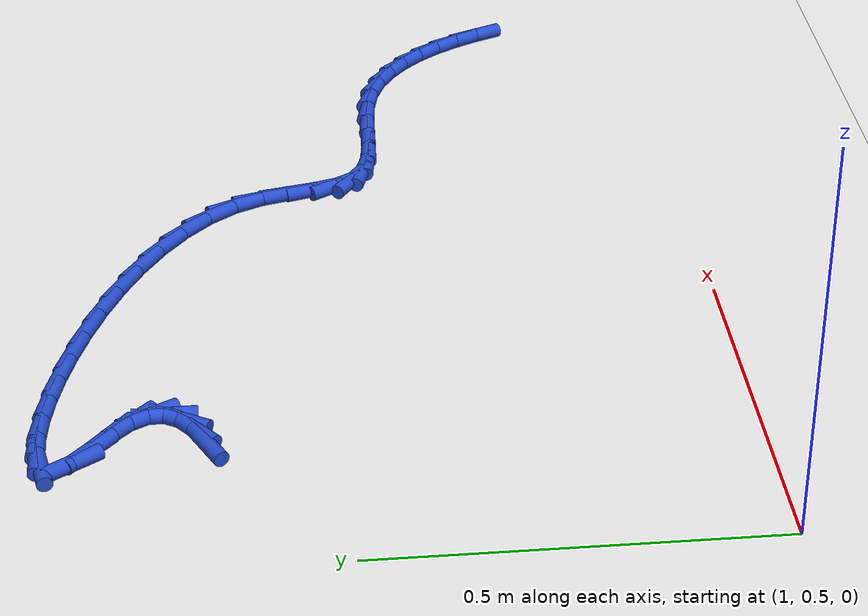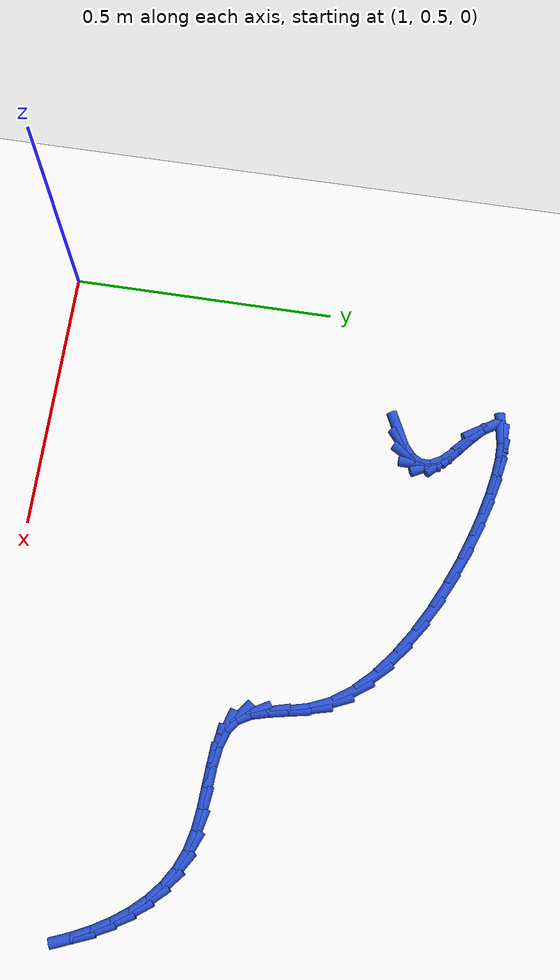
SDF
<sdf version="1.6">
 <world name="default">
  <model name="ground_plane">
   <static>1</static>
   <link name="link">
    <collision name="collision">
     <geometry><plane><normal>0 0 1</normal><size>100 100</size></plane></geometry>
     <surface><friction><ode><mu>100</mu><mu2>50</mu2></ode></friction></surface>
    </collision>
    <visual name="visual">
     <cast_shadows>0</cast_shadows>
     <geometry><plane><normal>0 0 1</normal><size>100 100</size></plane></geometry>
     <material>
      <script><uri>file://media/materials/scripts/gazebo.material</uri><name>Gazebo/WhiteGlow</name></script>
     </material>
    </visual>
   </link>
  </model>
  <model name="line">
   <link name="link_60">
    <pose>1.2222798924165295 1.1603760489507189 0.01 0 1.57 0.4559992652802266</pose>
    <collision name="collision">
     <geometry><cylinder><radius>0.01</radius><length>0.08</length></cylinder></geometry>
    </collision>
    <visual name="visual">
     <material>
      <script><name>Gazebo/Blue</name><uri>file://media/materials/scripts/gazebo.material</uri></script>
     </material>
     <geometry><cylinder><radius>0.01</radius><length>0.08</length></cylinder></geometry>
    </visual>
   </link>
   <link name="link_61">
    <pose>1.2498480330044583 1.1738975549472137 0.01 0 1.57 0.6788258323478273</pose>
    <collision name="collision">
     <geometry><cylinder><radius>0.01</radius><length>0.08</length></cylinder></geometry>
    </collision>
    <visual name="visual">
     <material>
      <script><name>Gazebo/Blue</name><uri>file://media/materials/scripts/gazebo.material</uri></script>
     </material>
     <geometry><cylinder><radius>0.01</radius><length>0.08</length></cylinder></geometry>
    </visual>
   </link>
   <link name="link_62">
    <pose>1.2692337053786533 1.1895363882454777 0.01 0 1.57 1.050735204315759</pose>
    <collision name="collision">
     <geometry><cylinder><radius>0.01</radius><length>0.08</length></cylinder></geometry>
    </collision>
    <visual name="visual">
     <material>
      <script><name>Gazebo/Blue</name><uri>file://media/materials/scripts/gazebo.material</uri></script>
     </material>
     <geometry><cylinder><radius>0.01</radius><length>0.08</length></cylinder></geometry>
    </visual>
   </link>
   <link name="link_63">
    <pose>1.279380008185273 1.2072547623940793 0.01 0 1.57 -1.5632070423842848</pose>
    <collision name="collision">
     <geometry><cylinder><radius>0.01</radius><length>0.08</length></cylinder></geometry>
    </collision>
    <visual name="visual">
     <material>
      <script><name>Gazebo/Blue</name><uri>file://media/materials/scripts/gazebo.material</uri></script>
     </material>
     <geometry><cylinder><radius>0.01</radius><length>0.08</length></cylinder></geometry>
    </visual>
   </link>
   <link name="link_64">
    <pose>1.279230040070475 1.2270148909415857 0.01 0 1.57 -1.0845802407968343</pose>
    <collision name="collision">
     <geometry><cylinder><radius>0.01</radius><length>0.08</length></cylinder></geometry>
    </collision>
    <visual name="visual">
     <material>
      <script><name>Gazebo/Blue</name><uri>file://media/materials/scripts/gazebo.material</uri></script>
     </material>
     <geometry><cylinder><radius>0.01</radius><length>0.08</length></cylinder></geometry>
    </visual>
   </link>
   <link name="link_65">
    <pose>1.2677268996804183 1.248778987436567 0.01 0 1.57 -0.7967105602884467</pose>
    <collision name="collision">
     <geometry><cylinder><radius>0.01</radius><length>0.08</length></cylinder></geometry>
    </collision>
    <visual name="visual">
     <material>
      <script><name>Gazebo/Blue</name><uri>file://media/materials/scripts/gazebo.material</uri></script>
     </material>
     <geometry><cylinder><radius>0.01</radius><length>0.08</length></cylinder></geometry>
    </visual>
   </link>
   <link name="link_66">
    <pose>1.2447308782711284 1.2723012647522993 0.01 0 1.57 -0.7028440234331017</pose>
    <collision name="collision">
     <geometry><cylinder><radius>0.01</radius><length>0.08</length></cylinder></geometry>
    </collision>
    <visual name="visual">
     <material>
      <script><name>Gazebo/Blue</name><uri>file://media/materials/scripts/gazebo.material</uri></script>
     </material>
     <geometry><cylinder><radius>0.01</radius><length>0.08</length></cylinder></geometry>
    </visual>
   </link>
   <link name="link_67">
    <pose>1.2170356798543405 1.295763578418855 0.01 0 1.57 -0.7489956851390467</pose>
    <collision name="collision">
     <geometry><cylinder><radius>0.01</radius><length>0.08</length></cylinder></geometry>
    </collision>
    <visual name="visual">
     <material>
      <script><name>Gazebo/Blue</name><uri>file://media/materials/scripts/gazebo.material</uri></script>
     </material>
     <geometry><cylinder><radius>0.01</radius><length>0.08</length></cylinder></geometry>
    </visual>
   </link>
   <link name="link_68">
    <pose>1.1945890412983757 1.316632718423587 0.01 0 1.57 -1.007700589777862</pose>
    <collision name="collision">
     <geometry><cylinder><radius>0.01</radius><length>0.08</length></cylinder></geometry>
    </collision>
    <visual name="visual">
     <material>
      <script><name>Gazebo/Blue</name><uri>file://media/materials/scripts/gazebo.material</uri></script>
     </material>
     <geometry><cylinder><radius>0.01</radius><length>0.08</length></cylinder></geometry>
    </visual>
   </link>
   <link name="link_71">
    <pose>1.197213082221624 1.3530111391347608 0.01 0 1.57 0.17477007311011628</pose>
    <collision name="collision">
     <geometry><cylinder><radius>0.01</radius><length>0.08</length></cylinder></geometry>
    </collision>
    <visual name="visual">
     <material>
      <script><name>Gazebo/Blue</name><uri>file://media/materials/scripts/gazebo.material</uri></script>
     </material>
     <geometry><cylinder><radius>0.01</radius><length>0.08</length></cylinder></geometry>
    </visual>
   </link>
   <link name="link_72">
    <pose>1.2181369649390634 1.356705700744409 0.01 0 1.57 -0.008687669150396234</pose>
    <collision name="collision">
     <geometry><cylinder><radius>0.01</radius><length>0.08</length></cylinder></geometry>
    </collision>
    <visual name="visual">
     <material>
      <script><name>Gazebo/Blue</name><uri>file://media/materials/scripts/gazebo.material</uri></script>
     </material>
     <geometry><cylinder><radius>0.01</radius><length>0.08</length></cylinder></geometry>
    </visual>
   </link>
   <link name="link_73">
    <pose>1.2469707877004825 1.3564551957295465 0.01 0 1.57 -0.11320363131416397</pose>
    <collision name="collision">
     <geometry><cylinder><radius>0.01</radius><length>0.08</length></cylinder></geometry>
    </collision>
    <visual name="visual">
     <material>
      <script><name>Gazebo/Blue</name><uri>file://media/materials/scripts/gazebo.material</uri></script>
     </material>
     <geometry><cylinder><radius>0.01</radius><length>0.08</length></cylinder></geometry>
    </visual>
   </link>
   <link name="link_74">
    <pose>1.2824457538093637 1.3524220577036903 0.01 0 1.57 -0.18521707449150657</pose>
    <collision name="collision">
     <geometry><cylinder><radius>0.01</radius><length>0.08</length></cylinder></geometry>
    </collision>
    <visual name="visual">
     <material>
      <script><name>Gazebo/Blue</name><uri>file://media/materials/scripts/gazebo.material</uri></script>
     </material>
     <geometry><cylinder><radius>0.01</radius><length>0.08</length></cylinder></geometry>
    </visual>
   </link>
   <link name="link_75">
    <pose>1.3232930665691873 1.344768720280356 0.01 0 1.57 -0.24232591253080182</pose>
    <collision name="collision">
     <geometry><cylinder><radius>0.01</radius><length>0.08</length></cylinder></geometry>
    </collision>
    <visual name="visual">
     <material>
      <script><name>Gazebo/Blue</name><uri>file://media/materials/scripts/gazebo.material</uri></script>
     </material>
     <geometry><cylinder><radius>0.01</radius><length>0.08</length></cylinder></geometry>
    </visual>
   </link>
   <link name="link_76">
    <pose>1.3682439292834352 1.3336576170730612 0.01 0 1.57 -0.29281457367207847</pose>
    <collision name="collision">
     <geometry><cylinder><radius>0.01</radius><length>0.08</length></cylinder></geometry>
    </collision>
    <visual name="visual">
     <material>
      <script><name>Gazebo/Blue</name><uri>file://media/materials/scripts/gazebo.material</uri></script>
     </material>
     <geometry><cylinder><radius>0.01</radius><length>0.08</length></cylinder></geometry>
    </visual>
   </link>
   <link name="link_77">
    <pose>1.4160295452555884 1.3192511816953223 0.01 0 1.57 -0.3414735196073798</pose>
    <collision name="collision">
     <geometry><cylinder><radius>0.01</radius><length>0.08</length></cylinder></geometry>
    </collision>
    <visual name="visual">
     <material>
      <script><name>Gazebo/Blue</name><uri>file://media/materials/scripts/gazebo.material</uri></script>
     </material>
     <geometry><cylinder><radius>0.01</radius><length>0.08</length></cylinder></geometry>
    </visual>
   </link>
   <link name="link_78">
    <pose>1.465381117789128 1.301711847760656 0.01 0 1.57 -0.39174663160890816</pose>
    <collision name="collision">
     <geometry><cylinder><radius>0.01</radius><length>0.08</length></cylinder></geometry>
    </collision>
    <visual name="visual">
     <material>
      <script><name>Gazebo/Blue</name><uri>file://media/materials/scripts/gazebo.material</uri></script>
     </material>
     <geometry><cylinder><radius>0.01</radius><length>0.08</length></cylinder></geometry>
    </visual>
   </link>
   <link name="link_79">
    <pose>1.5150298501875354 1.2812020488825786 0.01 0 1.57 -0.44673200243471844</pose>
    <collision name="collision">
     <geometry><cylinder><radius>0.01</radius><length>0.08</length></cylinder></geometry>
    </collision>
    <visual name="visual">
     <material>
      <script><name>Gazebo/Blue</name><uri>file://media/materials/scripts/gazebo.material</uri></script>
     </material>
     <geometry><cylinder><radius>0.01</radius><length>0.08</length></cylinder></geometry>
    </visual>
   </link>
   <link name="link_80">
    <pose>1.5637069457542918 1.2578842186746064 0.01 0 1.57 -0.5098142421383467</pose>
    <collision name="collision">
     <geometry><cylinder><radius>0.01</radius><length>0.08</length></cylinder></geometry>
    </collision>
    <visual name="visual">
     <material>
      <script><name>Gazebo/Blue</name><uri>file://media/materials/scripts/gazebo.material</uri></script>
     </material>
     <geometry><cylinder><radius>0.01</radius><length>0.08</length></cylinder></geometry>
    </visual>
   </link>
   <link name="link_81">
    <pose>1.6101436077928788 1.231920790750257 0.01 0 1.57 -0.5852284826661662</pose>
    <collision name="collision">
     <geometry><cylinder><radius>0.01</radius><length>0.08</length></cylinder></geometry>
    </collision>
    <visual name="visual">
     <material>
      <script><name>Gazebo/Blue</name><uri>file://media/materials/scripts/gazebo.material</uri></script>
     </material>
     <geometry><cylinder><radius>0.01</radius><length>0.08</length></cylinder></geometry>
    </visual>
   </link>
   <link name="link_82">
    <pose>1.6530710396067767 1.203474198723046 0.01 0 1.57 -0.6786890689363886</pose>
    <collision name="collision">
     <geometry><cylinder><radius>0.01</radius><length>0.08</length></cylinder></geometry>
    </collision>
    <visual name="visual">
     <material>
      <script><name>Gazebo/Blue</name><uri>file://media/materials/scripts/gazebo.material</uri></script>
     </material>
     <geometry><cylinder><radius>0.01</radius><length>0.08</length></cylinder></geometry>
    </visual>
   </link>
   <link name="link_83">
    <pose>1.691220444499468 1.1727068762064907 0.01 0 1.57 -0.7980541213603082</pose>
    <collision name="collision">
     <geometry><cylinder><radius>0.01</radius><length>0.08</length></cylinder></geometry>
    </collision>
    <visual name="visual">
     <material>
      <script><name>Gazebo/Blue</name><uri>file://media/materials/scripts/gazebo.material</uri></script>
     </material>
     <geometry><cylinder><radius>0.01</radius><length>0.08</length></cylinder></geometry>
    </visual>
   </link>
   <link name="link_84">
    <pose>1.723323025774433 1.1397812568141075 0.01 0 1.57 -0.9535292715406037</pose>
    <collision name="collision">
     <geometry><cylinder><radius>0.01</radius><length>0.08</length></cylinder></geometry>
    </collision>
    <visual name="visual">
     <material>
      <script><name>Gazebo/Blue</name><uri>file://media/materials/scripts/gazebo.material</uri></script>
     </material>
     <geometry><cylinder><radius>0.01</radius><length>0.08</length></cylinder></geometry>
    </visual>
   </link>
   <link name="link_85">
    <pose>1.748109986735153 1.1048597741594124 0.01 0 1.57 -1.1501669128799297</pose>
    <collision name="collision">
     <geometry><cylinder><radius>0.01</radius><length>0.08</length></cylinder></geometry>
    </collision>
    <visual name="visual">
     <material>
      <script><name>Gazebo/Blue</name><uri>file://media/materials/scripts/gazebo.material</uri></script>
     </material>
     <geometry><cylinder><radius>0.01</radius><length>0.08</length></cylinder></geometry>
    </visual>
   </link>
   <link name="link_86">
    <pose>1.7645138994703802 1.068188866166791 0.01 0 1.57 -1.3112420724312892</pose>
    <collision name="collision">
     <geometry><cylinder><radius>0.01</radius><length>0.08</length></cylinder></geometry>
    </collision>
    <visual name="visual">
     <material>
      <script><name>Gazebo/Blue</name><uri>file://media/materials/scripts/gazebo.material</uri></script>
     </material>
     <geometry><cylinder><radius>0.01</radius><length>0.08</length></cylinder></geometry>
    </visual>
   </link>
   <link name="link_87">
    <pose>1.7743332815994968 1.031210547219831 0.01 0 1.57 -1.3685661899801613</pose>
    <collision name="collision">
     <geometry><cylinder><radius>0.01</radius><length>0.08</length></cylinder></geometry>
    </collision>
    <visual name="visual">
     <material>
      <script><name>Gazebo/Blue</name><uri>file://media/materials/scripts/gazebo.material</uri></script>
     </material>
     <geometry><cylinder><radius>0.01</radius><length>0.08</length></cylinder></geometry>
    </visual>
   </link>
   <link name="link_88">
    <pose>1.7814999538293654 0.9962567742793507 0.01 0 1.57 -1.299750616894385</pose>
    <collision name="collision">
     <geometry><cylinder><radius>0.01</radius><length>0.08</length></cylinder></geometry>
    </collision>
    <visual name="visual">
     <material>
      <script><name>Gazebo/Blue</name><uri>file://media/materials/scripts/gazebo.material</uri></script>
     </material>
     <geometry><cylinder><radius>0.01</radius><length>0.08</length></cylinder></geometry>
    </visual>
   </link>
   <link name="link_89">
    <pose>1.7899965619599243 0.9656807068322338 0.01 0 1.57 -1.0458874950703692</pose>
    <collision name="collision">
     <geometry><cylinder><radius>0.01</radius><length>0.08</length></cylinder></geometry>
    </collision>
    <visual name="visual">
     <material>
      <script><name>Gazebo/Blue</name><uri>file://media/materials/scripts/gazebo.material</uri></script>
     </material>
     <geometry><cylinder><radius>0.01</radius><length>0.08</length></cylinder></geometry>
    </visual>
   </link>
   <link name="link_90">
    <pose>1.8038054250348166 0.9418352521529635 0.01 0 1.57 -0.621070327525698</pose>
    <collision name="collision">
     <geometry><cylinder><radius>0.01</radius><length>0.08</length></cylinder></geometry>
    </collision>
    <visual name="visual">
     <material>
      <script><name>Gazebo/Blue</name><uri>file://media/materials/scripts/gazebo.material</uri></script>
     </material>
     <geometry><cylinder><radius>0.01</radius><length>0.08</length></cylinder></geometry>
    </visual>
   </link>
   <link name="link_91">
    <pose>1.8257194138330552 0.9261552216497192 0.01 0 1.57 -0.3034674328019627</pose>
    <collision name="collision">
     <geometry><cylinder><radius>0.01</radius><length>0.08</length></cylinder></geometry>
    </collision>
    <visual name="visual">
     <material>
      <script><name>Gazebo/Blue</name><uri>file://media/materials/scripts/gazebo.material</uri></script>
     </material>
     <geometry><cylinder><radius>0.01</radius><length>0.08</length></cylinder></geometry>
    </visual>
   </link>
   <link name="link_92">
    <pose>1.8546651219940231 0.917091174985199 0.01 0 1.57 -0.13409178280921627</pose>
    <collision name="collision">
     <geometry><cylinder><radius>0.01</radius><length>0.08</length></cylinder></geometry>
    </collision>
    <visual name="visual">
     <material>
      <script><name>Gazebo/Blue</name><uri>file://media/materials/scripts/gazebo.material</uri></script>
     </material>
     <geometry><cylinder><radius>0.01</radius><length>0.08</length></cylinder></geometry>
    </visual>
   </link>
   <link name="link_93">
    <pose>1.8887849358783473 0.9124883681007382 0.01 0 1.57 -0.06126239321919002</pose>
    <collision name="collision">
     <geometry><cylinder><radius>0.01</radius><length>0.08</length></cylinder></geometry>
    </collision>
    <visual name="visual">
     <material>
      <script><name>Gazebo/Blue</name><uri>file://media/materials/scripts/gazebo.material</uri></script>
     </material>
     <geometry><cylinder><radius>0.01</radius><length>0.08</length></cylinder></geometry>
    </visual>
   </link>
   <link name="link_94">
    <pose>1.9262212418466547 0.9101920569376701 0.01 0 1.57 -0.05508111813115847</pose>
    <collision name="collision">
     <geometry><cylinder><radius>0.01</radius><length>0.08</length></cylinder></geometry>
    </collision>
    <visual name="visual">
     <material>
      <script><name>Gazebo/Blue</name><uri>file://media/materials/scripts/gazebo.material</uri></script>
     </material>
     <geometry><cylinder><radius>0.01</radius><length>0.08</length></cylinder></geometry>
    </visual>
   </link>
   <link name="link_95">
    <pose>1.9651164262595713 0.9080474974373295 0.01 0 1.57 -0.10732457470055283</pose>
    <collision name="collision">
     <geometry><cylinder><radius>0.01</radius><length>0.08</length></cylinder></geometry>
    </collision>
    <visual name="visual">
     <material>
      <script><name>Gazebo/Blue</name><uri>file://media/materials/scripts/gazebo.material</uri></script>
     </material>
     <geometry><cylinder><radius>0.01</radius><length>0.08</length></cylinder></geometry>
    </visual>
   </link>
   <link name="link_96">
    <pose>2.003612875477724 0.9038999455410502 0.01 0 1.57 -0.2245457225120204</pose>
    <collision name="collision">
     <geometry><cylinder><radius>0.01</radius><length>0.08</length></cylinder></geometry>
    </collision>
    <visual name="visual">
     <material>
      <script><name>Gazebo/Blue</name><uri>file://media/materials/scripts/gazebo.material</uri></script>
     </material>
     <geometry><cylinder><radius>0.01</radius><length>0.08</length></cylinder></geometry>
    </visual>
   </link>
   <link name="link_97">
    <pose>2.0398705247348117 0.8956187946949907 0.01 0 1.57 -0.3871573613724709</pose>
    <collision name="collision">
     <geometry><cylinder><radius>0.01</radius><length>0.08</length></cylinder></geometry>
    </collision>
    <visual name="visual">
     <material>
      <script><name>Gazebo/Blue</name><uri>file://media/materials/scripts/gazebo.material</uri></script>
     </material>
     <geometry><cylinder><radius>0.01</radius><length>0.08</length></cylinder></geometry>
    </visual>
   </link>
   <link name="link_98">
    <pose>2.0728483942066416 0.8821725355105136 0.01 0 1.57 -0.5466565688693179</pose>
    <collision name="collision">
     <geometry><cylinder><radius>0.01</radius><length>0.08</length></cylinder></geometry>
    </collision>
    <visual name="visual">
     <material>
      <script><name>Gazebo/Blue</name><uri>file://media/materials/scripts/gazebo.material</uri></script>
     </material>
     <geometry><cylinder><radius>0.01</radius><length>0.08</length></cylinder></geometry>
    </visual>
   </link>
   <link name="link_99">
    <pose>2.102616723183298 0.8640580790635152 0.01 0 1.57 -0.6928245263786239</pose>
    <collision name="collision">
     <geometry><cylinder><radius>0.01</radius><length>0.08</length></cylinder></geometry>
    </collision>
    <visual name="visual">
     <material>
      <script><name>Gazebo/Blue</name><uri>file://media/materials/scripts/gazebo.material</uri></script>
     </material>
     <geometry><cylinder><radius>0.01</radius><length>0.08</length></cylinder></geometry>
    </visual>
   </link>
   <link name="link_100">
    <pose>2.1293278622825698 0.8418852760221116 0.01 0 1.57 -0.8221020304431803</pose>
    <collision name="collision">
     <geometry><cylinder><radius>0.01</radius><length>0.08</length></cylinder></geometry>
    </collision>
    <visual name="visual">
     <material>
      <script><name>Gazebo/Blue</name><uri>file://media/materials/scripts/gazebo.material</uri></script>
     </material>
     <geometry><cylinder><radius>0.01</radius><length>0.08</length></cylinder></geometry>
    </visual>
   </link>
   <link name="link_101">
    <pose>2.1531341621222455 0.8162639770544197 0.01 0 1.57 -0.9338746706398564</pose>
    <collision name="collision">
     <geometry><cylinder><radius>0.01</radius><length>0.08</length></cylinder></geometry>
    </collision>
    <visual name="visual">
     <material>
      <script><name>Gazebo/Blue</name><uri>file://media/materials/scripts/gazebo.material</uri></script>
     </material>
     <geometry><cylinder><radius>0.01</radius><length>0.08</length></cylinder></geometry>
    </visual>
   </link>
   <link name="link_102">
    <pose>2.174187973320114 0.7878040328285557 0.01 0 1.57 -1.0294087001116023</pose>
    <collision name="collision">
     <geometry><cylinder><radius>0.01</radius><length>0.08</length></cylinder></geometry>
    </collision>
    <visual name="visual">
     <material>
      <script><name>Gazebo/Blue</name><uri>file://media/materials/scripts/gazebo.material</uri></script>
     </material>
     <geometry><cylinder><radius>0.01</radius><length>0.08</length></cylinder></geometry>
    </visual>
   </link>
   <link name="link_103">
    <pose>2.192641646493964 0.7571152940126362 0.01 0 1.57 -1.110819088437704</pose>
    <collision name="collision">
     <geometry><cylinder><radius>0.01</radius><length>0.08</length></cylinder></geometry>
    </collision>
    <visual name="visual">
     <material>
      <script><name>Gazebo/Blue</name><uri>file://media/materials/scripts/gazebo.material</uri></script>
     </material>
     <geometry><cylinder><radius>0.01</radius><length>0.08</length></cylinder></geometry>
    </visual>
   </link>
   <link name="link_104">
    <pose>2.2086475322615846 0.7248076112747781 0.01 0 1.57 -1.1804027094474792</pose>
    <collision name="collision">
     <geometry><cylinder><radius>0.01</radius><length>0.08</length></cylinder></geometry>
    </collision>
    <visual name="visual">
     <material>
      <script><name>Gazebo/Blue</name><uri>file://media/materials/scripts/gazebo.material</uri></script>
     </material>
     <geometry><cylinder><radius>0.01</radius><length>0.08</length></cylinder></geometry>
    </visual>
   </link>
  </model>
 </world>
</sdf>
